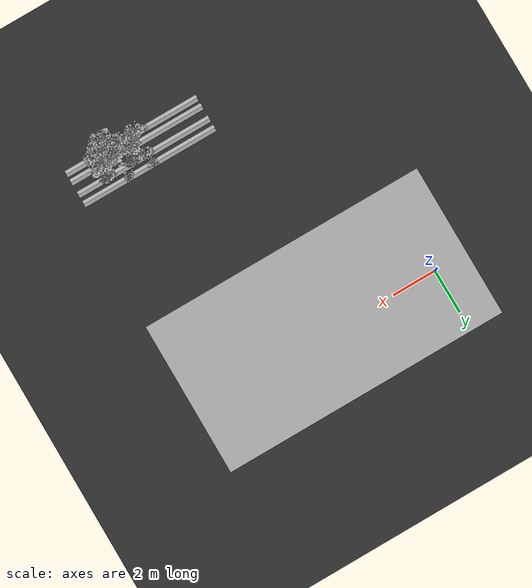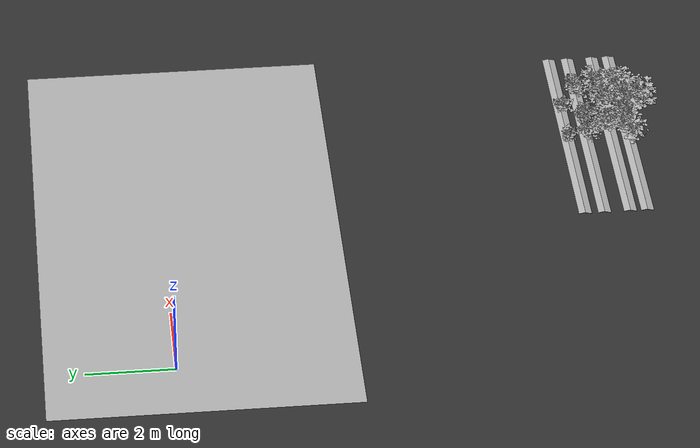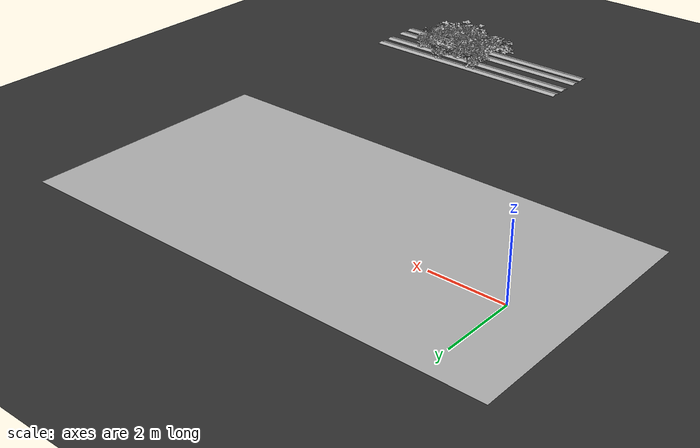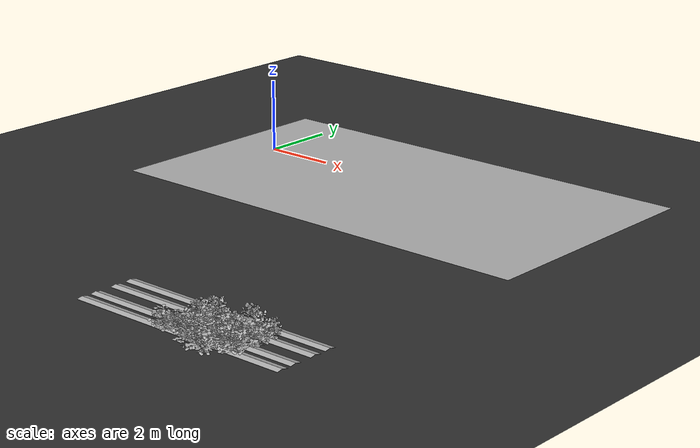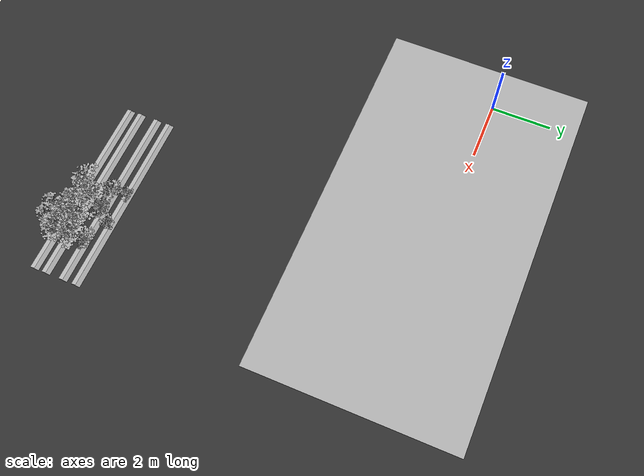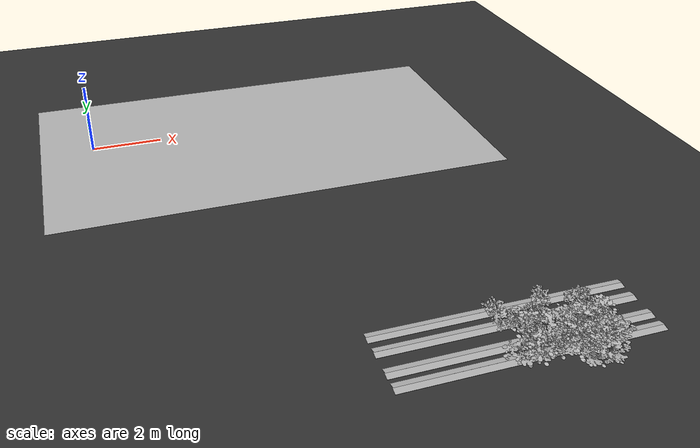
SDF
<sdf version="1.7">
 <world name="default">
  <model name="ground_plane">
   <static>1</static>
   <link name="link">
    <collision name="collision">
     <geometry><plane><normal>0 0 1</normal><size>100 100</size></plane></geometry>
     <surface>
      <contact><collide_bitmask>65535</collide_bitmask></contact>
      <friction><ode><mu>100</mu><mu2>50</mu2></ode></friction>
     </surface>
    </collision>
    <visual name="visual">
     <cast_shadows>0</cast_shadows>
     <geometry><plane><normal>0 0 1</normal><size>100 100</size></plane></geometry>
     <material>
      <ambient>0.2 0.2 0.2 1.0</ambient>
      <diffuse>0.2 0.2 0.2 1.0</diffuse>
      <specular>0.2 0.2 0.2 1.0</specular>
      <emissive>0.2 0.2 0.2 1.0</emissive>
     </material>
    </visual>
   </link>
  </model>
  <model name="ground">
   <pose>5 -0.5 0.01  3.141592654 0 0</pose>
   <static>true</static>
   <link name="body">
    <visual name="visual">
     <cast_shadows>0</cast_shadows>
     <geometry>
      <mesh><uri>file:///home/ifcosta/final_ws/src/cnn_line/worlds/models/ground.obj</uri></mesh>
     </geometry>
    </visual>
   </link>
  </model>
  <model name="plt_30026">
   <pose>7.75 -10.3 0.0115 0.0 0.0 -1.0217</pose>
   <static>true</static>
   <link name="body">
    <visual name="visual">
     <geometry>
      <mesh><uri>file:///home/ifcosta/final_ws/src/cnn_line/worlds/models/plant35.obj</uri></mesh>
     </geometry>
    </visual>
   </link>
  </model>
  <model name="plt_30027">
   <pose>8.06 -10.3 0.0198 0.0 0.0 0.20957</pose>
   <static>true</static>
   <link name="body">
    <visual name="visual">
     <geometry>
      <mesh><uri>file:///home/ifcosta/final_ws/src/cnn_line/worlds/models/plant31.obj</uri></mesh>
     </geometry>
    </visual>
   </link>
  </model>
  <model name="plt_30028">
   <pose>8.4 -10.2 0.0158 0.0 0.0 1.0751</pose>
   <static>true</static>
   <link name="body">
    <visual name="visual">
     <geometry>
      <mesh><uri>file:///home/ifcosta/final_ws/src/cnn_line/worlds/models/plant34.obj</uri></mesh>
     </geometry>
    </visual>
   </link>
  </model>
  <model name="plt_30029">
   <pose>8.66 -10.2 0.0158 0.0 0.0 1.8413</pose>
   <static>true</static>
   <link name="body">
    <visual name="visual">
     <geometry>
      <mesh><uri>file:///home/ifcosta/final_ws/src/cnn_line/worlds/models/plant33.obj</uri></mesh>
     </geometry>
    </visual>
   </link>
  </model>
  <model name="plt_30032">
   <pose>9.61 -10.2 0.014 0.0 0.0 -0.65192</pose>
   <static>true</static>
   <link name="body">
    <visual name="visual">
     <geometry>
      <mesh><uri>file:///home/ifcosta/final_ws/src/cnn_line/worlds/models/plant35.obj</uri></mesh>
     </geometry>
    </visual>
   </link>
  </model>
  <model name="plt_30033">
   <pose>9.89 -10.2 0.014 0.0 0.0 -0.21498</pose>
   <static>true</static>
   <link name="body">
    <visual name="visual">
     <geometry>
      <mesh><uri>file:///home/ifcosta/final_ws/src/cnn_line/worlds/models/plant33.obj</uri></mesh>
     </geometry>
    </visual>
   </link>
  </model>
  <model name="slope_1234">
   <pose>8.0 -10.2 -0.005 0.0 0.0 0.0</pose>
   <static>true</static>
   <link name="body">
    <visual name="visual">
     <geometry>
      <mesh><uri>file:///home/ifcosta/final_ws/src/cnn_line/worlds/models/slope.obj</uri></mesh>
     </geometry>
    </visual>
   </link>
  </model>
  <model name="slope_1334">
   <pose>8.0 -10.2 -0.005 0.0 0.0 3.1416</pose>
   <static>true</static>
   <link name="body">
    <visual name="visual">
     <geometry>
      <mesh><uri>file:///home/ifcosta/final_ws/src/cnn_line/worlds/models/slope.obj</uri></mesh>
     </geometry>
    </visual>
   </link>
  </model>
  <model name="plt_30060">
   <pose>7.77 -9.75 0.014 0.0 0.0 0.74392</pose>
   <static>true</static>
   <link name="body">
    <visual name="visual">
     <geometry>
      <mesh><uri>file:///home/ifcosta/final_ws/src/cnn_line/worlds/models/plant34.obj</uri></mesh>
     </geometry>
    </visual>
   </link>
  </model>
  <model name="plt_30064">
   <pose>9.0 -9.77 0.0196 0.0 0.0 0.99251</pose>
   <static>true</static>
   <link name="body">
    <visual name="visual">
     <geometry>
      <mesh><uri>file:///home/ifcosta/final_ws/src/cnn_line/worlds/models/plant33.obj</uri></mesh>
     </geometry>
    </visual>
   </link>
  </model>
  <model name="slope_1268">
   <pose>8.0 -9.75 -0.005 0.0 0.0 0.0</pose>
   <static>true</static>
   <link name="body">
    <visual name="visual">
     <geometry>
      <mesh><uri>file:///home/ifcosta/final_ws/src/cnn_line/worlds/models/slope.obj</uri></mesh>
     </geometry>
    </visual>
   </link>
  </model>
  <model name="slope_1368">
   <pose>8.0 -9.75 -0.005 0.0 0.0 3.1416</pose>
   <static>true</static>
   <link name="body">
    <visual name="visual">
     <geometry>
      <mesh><uri>file:///home/ifcosta/final_ws/src/cnn_line/worlds/models/slope.obj</uri></mesh>
     </geometry>
    </visual>
   </link>
  </model>
  <model name="plt_40132">
   <pose>9.0 -11.7 0.0154 0.0 0.0 -1.4601</pose>
   <static>true</static>
   <link name="body">
    <visual name="visual">
     <geometry>
      <mesh><uri>file:///home/ifcosta/final_ws/src/cnn_line/worlds/models/plant37.obj</uri></mesh>
     </geometry>
    </visual>
   </link>
  </model>
  <model name="plt_40133">
   <pose>9.36 -11.7 0.0143 0.0 0.0 -0.65865</pose>
   <static>true</static>
   <link name="body">
    <visual name="visual">
     <geometry>
      <mesh><uri>file:///home/ifcosta/final_ws/src/cnn_line/worlds/models/plant37.obj</uri></mesh>
     </geometry>
    </visual>
   </link>
  </model>
  <model name="plt_40162">
   <pose>7.73 -11.3 0.0115 0.0 0.0 0.47703</pose>
   <static>true</static>
   <link name="body">
    <visual name="visual">
     <geometry>
      <mesh><uri>file:///home/ifcosta/final_ws/src/cnn_line/worlds/models/plant37.obj</uri></mesh>
     </geometry>
    </visual>
   </link>
  </model>
  <model name="plt_40163">
   <pose>8.08 -11.2 0.013 0.0 0.0 1.986</pose>
   <static>true</static>
   <link name="body">
    <visual name="visual">
     <geometry>
      <mesh><uri>file:///home/ifcosta/final_ws/src/cnn_line/worlds/models/plant37.obj</uri></mesh>
     </geometry>
    </visual>
   </link>
  </model>
  <model name="plt_40164">
   <pose>8.4 -11.3 0.0156 0.0 0.0 -0.040397</pose>
   <static>true</static>
   <link name="body">
    <visual name="visual">
     <geometry>
      <mesh><uri>file:///home/ifcosta/final_ws/src/cnn_line/worlds/models/plant37.obj</uri></mesh>
     </geometry>
    </visual>
   </link>
  </model>
  <model name="plt_40165">
   <pose>8.7 -11.2 0.0144 0.0 0.0 1.2055</pose>
   <static>true</static>
   <link name="body">
    <visual name="visual">
     <geometry>
      <mesh><uri>file:///home/ifcosta/final_ws/src/cnn_line/worlds/models/plant37.obj</uri></mesh>
     </geometry>
    </visual>
   </link>
  </model>
  <model name="plt_40166">
   <pose>9.01 -11.3 0.0153 0.0 0.0 1.6423</pose>
   <static>true</static>
   <link name="body">
    <visual name="visual">
     <geometry>
      <mesh><uri>file:///home/ifcosta/final_ws/src/cnn_line/worlds/models/plant37.obj</uri></mesh>
     </geometry>
    </visual>
   </link>
  </model>
  <model name="plt_40167">
   <pose>9.25 -11.3 0.0158 0.0 0.0 0.17764</pose>
   <static>true</static>
   <link name="body">
    <visual name="visual">
     <geometry>
      <mesh><uri>file:///home/ifcosta/final_ws/src/cnn_line/worlds/models/plant37.obj</uri></mesh>
     </geometry>
    </visual>
   </link>
  </model>
  <model name="plt_40168">
   <pose>9.61 -11.3 0.0155 0.0 0.0 2.7647</pose>
   <static>true</static>
   <link name="body">
    <visual name="visual">
     <geometry>
      <mesh><uri>file:///home/ifcosta/final_ws/src/cnn_line/worlds/models/plant37.obj</uri></mesh>
     </geometry>
    </visual>
   </link>
  </model>
  <model name="plt_40169">
   <pose>9.88 -11.2 0.0154 0.0 0.0 -0.89514</pose>
   <static>true</static>
   <link name="body">
    <visual name="visual">
     <geometry>
      <mesh><uri>file:///home/ifcosta/final_ws/src/cnn_line/worlds/models/plant37.obj</uri></mesh>
     </geometry>
    </visual>
   </link>
  </model>
  <model name="slope_1770">
   <pose>8.0 -11.2 -0.005 0.0 0.0 0.0</pose>
   <static>true</static>
   <link name="body">
    <visual name="visual">
     <geometry>
      <mesh><uri>file:///home/ifcosta/final_ws/src/cnn_line/worlds/models/slope.obj</uri></mesh>
     </geometry>
    </visual>
   </link>
  </model>
  <model name="slope_1870">
   <pose>8.0 -11.2 -0.005 0.0 0.0 3.1416</pose>
   <static>true</static>
   <link name="body">
    <visual name="visual">
     <geometry>
      <mesh><uri>file:///home/ifcosta/final_ws/src/cnn_line/worlds/models/slope.obj</uri></mesh>
     </geometry>
    </visual>
   </link>
  </model>
  <model name="plt_40197">
   <pose>8.11 -10.7 0.0163 0.0 0.0 -1.3337</pose>
   <static>true</static>
   <link name="body">
    <visual name="visual">
     <geometry>
      <mesh><uri>file:///home/ifcosta/final_ws/src/cnn_line/worlds/models/plant37.obj</uri></mesh>
     </geometry>
    </visual>
   </link>
  </model>
  <model name="plt_40198">
   <pose>8.36 -10.8 0.0168 0.0 0.0 0.88435</pose>
   <static>true</static>
   <link name="body">
    <visual name="visual">
     <geometry>
      <mesh><uri>file:///home/ifcosta/final_ws/src/cnn_line/worlds/models/plant37.obj</uri></mesh>
     </geometry>
    </visual>
   </link>
  </model>
  <model name="plt_40200">
   <pose>8.98 -10.8 0.0117 0.0 0.0 -0.78673</pose>
   <static>true</static>
   <link name="body">
    <visual name="visual">
     <geometry>
      <mesh><uri>file:///home/ifcosta/final_ws/src/cnn_line/worlds/models/plant37.obj</uri></mesh>
     </geometry>
    </visual>
   </link>
  </model>
  <model name="plt_40201">
   <pose>9.28 -10.8 0.0168 0.0 0.0 1.4762</pose>
   <static>true</static>
   <link name="body">
    <visual name="visual">
     <geometry>
      <mesh><uri>file:///home/ifcosta/final_ws/src/cnn_line/worlds/models/plant37.obj</uri></mesh>
     </geometry>
    </visual>
   </link>
  </model>
  <model name="plt_40202">
   <pose>9.59 -10.7 0.017 0.0 0.0 -0.43689</pose>
   <static>true</static>
   <link name="body">
    <visual name="visual">
     <geometry>
      <mesh><uri>file:///home/ifcosta/final_ws/src/cnn_line/worlds/models/plant37.obj</uri></mesh>
     </geometry>
    </visual>
   </link>
  </model>
  <model name="plt_40203">
   <pose>9.94 -10.7 0.0136 0.0 0.0 1.583</pose>
   <static>true</static>
   <link name="body">
    <visual name="visual">
     <geometry>
      <mesh><uri>file:///home/ifcosta/final_ws/src/cnn_line/worlds/models/plant37.obj</uri></mesh>
     </geometry>
    </visual>
   </link>
  </model>
  <model name="slope_1804">
   <pose>8.0 -10.8 -0.005 0.0 0.0 0.0</pose>
   <static>true</static>
   <link name="body">
    <visual name="visual">
     <geometry>
      <mesh><uri>file:///home/ifcosta/final_ws/src/cnn_line/worlds/models/slope.obj</uri></mesh>
     </geometry>
    </visual>
   </link>
  </model>
  <model name="slope_1904">
   <pose>8.0 -10.8 -0.005 0.0 0.0 3.1416</pose>
   <static>true</static>
   <link name="body">
    <visual name="visual">
     <geometry>
      <mesh><uri>file:///home/ifcosta/final_ws/src/cnn_line/worlds/models/slope.obj</uri></mesh>
     </geometry>
    </visual>
   </link>
  </model>
 </world>
</sdf>
